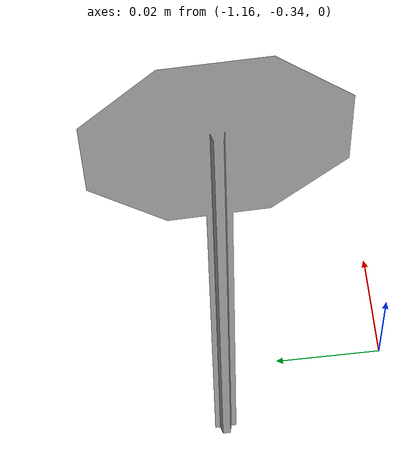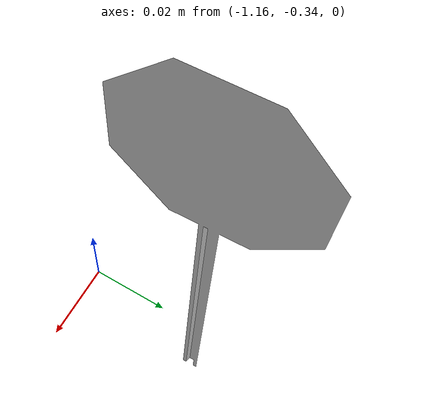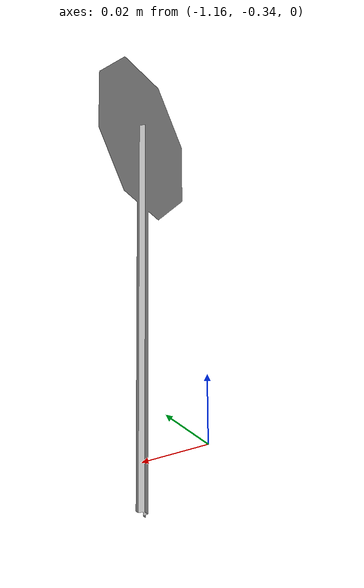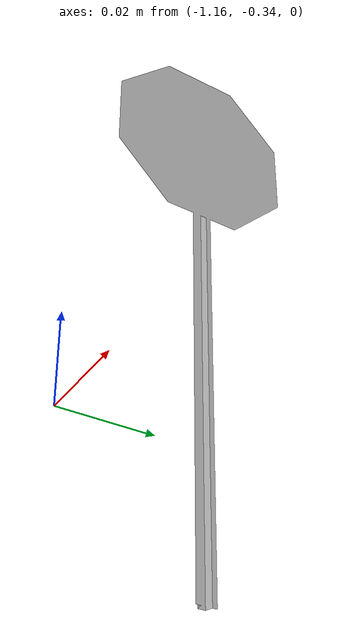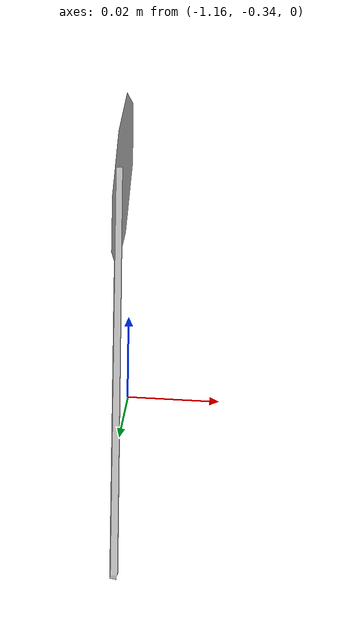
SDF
<?xml version='1.0'?>
<sdf version='1.6'>
  <model name='panneau_stop'>
    <link name='panneau_stop::panneau_stop::Stop Sign::link'>
      <pose frame=''>-1.16 -0.31 -0.03 0 -0 1.6</pose>
      <inertial>
        <mass>1</mass>
        <pose frame=''>0 0 0 0 -0 1.6</pose>
        <inertia>
          <ixx>1</ixx>
          <ixy>0</ixy>
          <ixz>0</ixz>
          <iyy>1</iyy>
          <iyz>0</iyz>
          <izz>1</izz>
        </inertia>
      </inertial>
      <self_collide>0</self_collide>
      <kinematic>0</kinematic>
      <gravity>1</gravity>
      <visual name='visual'>
        <geometry>
          <mesh>
            <uri>model://stop_sign/meshes/stop_sign.dae</uri>
            <scale>0.07 0.07 0.07</scale>
          </mesh>
        </geometry>
        <material>
          <script>
            <uri>model://stop_sign/materials/scripts</uri>
            <uri>model://stop_sign/materials/textures</uri>
            <name>StopSign/Diffuse</name>
          </script>
          <shader type='pixel'>
            <normal_map>__default__</normal_map>
          </shader>
          <ambient>0.8 0.8 0.8 1</ambient>
          <diffuse>0.7 0.7 0.7 1</diffuse>
          <specular>0.01 0.01 0.01 1</specular>
          <emissive>1 1 1 1</emissive>
        </material>
        <pose frame=''>0 0 0 0 -0 0</pose>
        <transparency>0</transparency>
        <cast_shadows>1</cast_shadows>
      </visual>
      <collision name='collision'>
        <laser_retro>0</laser_retro>
        <max_contacts>10</max_contacts>
        <pose frame=''>0 0 0 0 -0 0</pose>
        <geometry>
          <mesh>
            <uri>model://stop_sign/meshes/stop_sign.dae</uri>
            <scale>0.07 0.07 0.07</scale>
          </mesh>
        </geometry>
        <surface>
          <friction>
            <ode>
              <mu>1</mu>
              <mu2>1</mu2>
              <fdir1>0 0 0</fdir1>
              <slip1>0</slip1>
              <slip2>0</slip2>
            </ode>
            <torsional>
              <coefficient>1</coefficient>
              <patch_radius>0</patch_radius>
              <surface_radius>0</surface_radius>
              <use_patch_radius>1</use_patch_radius>
              <ode>
                <slip>0</slip>
              </ode>
            </torsional>
          </friction>
          <bounce>
            <restitution_coefficient>0</restitution_coefficient>
            <threshold>1e+06</threshold>
          </bounce>
          <contact>
            <collide_without_contact>0</collide_without_contact>
            <collide_without_contact_bitmask>1</collide_without_contact_bitmask>
            <collide_bitmask>1</collide_bitmask>
            <ode>
              <soft_cfm>0</soft_cfm>
              <soft_erp>0.2</soft_erp>
              <kp>1e+13</kp>
              <kd>1</kd>
              <max_vel>0.01</max_vel>
              <min_depth>0</min_depth>
            </ode>
            <bullet>
              <split_impulse>1</split_impulse>
              <split_impulse_penetration_threshold>-0.01</split_impulse_penetration_threshold>
              <soft_cfm>0</soft_cfm>
              <soft_erp>0.2</soft_erp>
              <kp>1e+13</kp>
              <kd>1</kd>
            </bullet>
          </contact>
        </surface>
      </collision>
    </link>
    <static>1</static>
    <allow_auto_disable>1</allow_auto_disable>
  </model>
</sdf>
